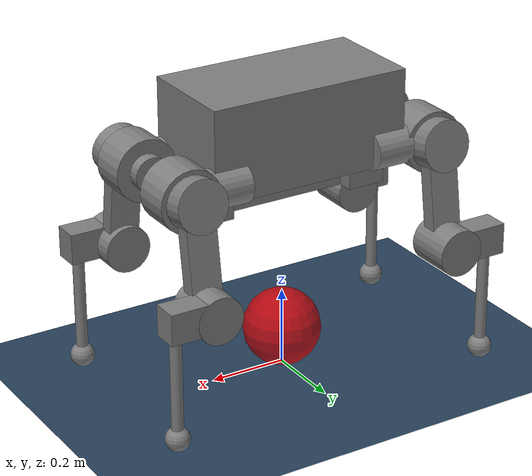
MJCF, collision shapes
<mujoco model="anymal_b scene">
    <include file="anymal_b.xml" />

    <statistic center="0 0 0.3" extent="1.2" />

    <visual>
        <headlight diffuse="0.6 0.6 0.6" ambient="0.3 0.3 0.3" specular="0 0 0" />
        <rgba haze="0.15 0.25 0.35 1" />
        <global azimuth="120" elevation="-20" />
    </visual>

    <asset>
        <texture type="skybox" builtin="gradient" rgb1="0.3 0.5 0.7" rgb2="0 0 0" width="512"
            height="3072" />
        <texture type="2d" name="groundplane" builtin="checker" mark="edge" rgb1="0.2 0.3 0.4"
            rgb2="0.1 0.2 0.3"
            markrgb="0.8 0.8 0.8" width="300" height="300" />
        <material name="groundplane" texture="groundplane" texuniform="true" texrepeat="5 5"
            reflectance="0.2" />
    </asset>

    <worldbody>
        <light pos="0 0 1.5" dir="0 0 -1" directional="true" />
        <site name="target_site" pos="0 0 0.1" size="0.1" rgba="1 0 0 0.7" />
        <geom name="floor" size="0 0 0.05" type="plane" material="groundplane" />
    </worldbody>
</mujoco>

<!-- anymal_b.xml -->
<mujoco model="anymal_b">
  <compiler angle="radian" meshdir="assets" texturedir="assets" autolimits="true" />

  <option cone="elliptic" impratio="100" />

  <default>
    <default class="anymal_b">
      <mesh scale="0.001 0.001 0.001" />
      <site group="3" rgba="1 0 0 0.66" />
      <joint type="hinge" damping="1" frictionloss="0.1" />
      <default class="HAA">
        <joint axis="1 0 0" />
      </default>
      <default class="HFE">
        <joint axis="0 1 0" />
      </default>
      <default class="KFE">
        <joint axis="0 1 0" />
      </default>
      <geom mass="0" />
      <default class="visual">
        <geom type="mesh" contype="0" conaffinity="0" group="2" />
        <default class="visual_zflip">
          <geom quat="0 0 0 1" />
        </default>
      </default>
      <default class="collision">
        <geom group="3" />
        <default class="haa_actuator">
          <geom type="cylinder" size="0.05 0.05" euler="0 1.57079632679 0" />
        </default>
        <default class="belly_plate_bump">
          <geom type="box" size="0.05 0.05 0.035" />
        </default>
        <default class="mount">
          <geom type="box" size="0.01 0.135 0.045" />
        </default>
        <default class="protector">
          <geom type="cylinder" size="0.08 0.05" />
        </default>
        <default class="heatfins">
          <geom type="cylinder" size="0.045 0.015" />
        </default>
        <default class="thigh_with_fins">
          <geom type="box" size="0.04 0.02 0.125" />
        </default>
        <default class="kfe_actuator">
          <geom type="cylinder" size="0.06 0.06" />
        </default>
        <default class="upper_protector">
          <geom type="cylinder" size="0.066 0.06" />
        </default>
        <default class="shank">
          <geom type="box" size="0.04 0.034 0.065" euler="0 1.57079632679 0" />
        </default>
        <default class="adapter">
          <geom type="cylinder" size="0.015 0.14" pos="0 0 -0.14" />
        </default>
        <default class="foot">
          <geom type="sphere" size="0.031" pos="0 0 0.02325" priority="1" solimp="0.015 1 0.031"
            condim="6"
            friction="0.8 0.02 0.01" />
        </default>
      </default>
      <default class="affine">
        <position kp="100" ctrlrange="-6.28 6.28" forcerange="-40 40" />
      </default>
    </default>
  </default>

  <asset>
    <material name="light_gray" rgba="0.8 0.8 0.8 1" />
    <material name="dark_gray" rgba="0.64 0.64 0.64 1" />
    <material name="alu_eloxiert" rgba="0.1139 0.1139 0.1139 1" />
    <material name="any_blau" rgba="0.2399 0.3499 0.5899 1" />
    <texture name="base_uv_texture" type="2d" file="base_uv_texture.png" />
    <material name="carbon_fibre_logo" texture="base_uv_texture" specular="1" shininess="1" />
    <material name="rot_emcy" rgba="0.2611 0.09645 0.0735 1" />
    <material name="yellow_emcy" rgba="0.5987 0.4607 0.2442 1" />
    <material name="copper" rgba="0.8 0.4673 0.284 1" />
    <material name="foam_dark" rgba="0.1 0.1 0.1 1" />
    <texture name="carbon_uv_texture" type="2d" file="carbon_uv_texture.png" />
    <material name="carbon_fibre" texture="carbon_uv_texture" specular="1" shininess="1" />

    <mesh class="anymal_b" file="anymal_base_0.obj" />
    <mesh class="anymal_b" file="anymal_base_1.obj" />
    <mesh class="anymal_b" file="anymal_base_2.obj" />
    <mesh class="anymal_b" file="anymal_base_3.obj" />
    <mesh class="anymal_b" file="anymal_base_4.obj" />
    <mesh class="anymal_b" file="anymal_base_5.obj" />
    <mesh class="anymal_b" file="anymal_base_6.obj" />
    <mesh class="anymal_b" file="anymal_base_7.obj" />
    <mesh class="anymal_b" file="anymal_hip_l_0.obj" />
    <mesh class="anymal_b" file="anymal_hip_l_1.obj" />
    <mesh class="anymal_b" file="anymal_hip_l_2.obj" />
    <mesh class="anymal_b" file="anymal_hip_l_3.obj" />
    <mesh class="anymal_b" file="anymal_hip_l_4.obj" />
    <mesh class="anymal_b" file="anymal_hip_l_5.obj" />
    <mesh class="anymal_b" file="anymal_hip_l_6.obj" />
    <mesh class="anymal_b" file="anymal_thigh_l_0.obj" />
    <mesh class="anymal_b" file="anymal_thigh_l_1.obj" />
    <mesh class="anymal_b" file="anymal_thigh_l_2.obj" />
    <mesh class="anymal_b" file="anymal_thigh_l_3.obj" />
    <mesh class="anymal_b" file="anymal_thigh_l_4.obj" />
    <mesh class="anymal_b" file="anymal_thigh_l_5.obj" />
    <mesh class="anymal_b" file="anymal_shank_l_0.obj" />
    <mesh class="anymal_b" file="anymal_shank_l_1.obj" />
    <mesh class="anymal_b" file="anymal_shank_l_2.obj" />
    <mesh class="anymal_b" file="anymal_shank_l_3.obj" />
    <mesh class="anymal_b" file="anymal_hip_r_0.obj" />
    <mesh class="anymal_b" file="anymal_hip_r_1.obj" />
    <mesh class="anymal_b" file="anymal_hip_r_2.obj" />
    <mesh class="anymal_b" file="anymal_hip_r_3.obj" />
    <mesh class="anymal_b" file="anymal_hip_r_4.obj" />
    <mesh class="anymal_b" file="anymal_hip_r_5.obj" />
    <mesh class="anymal_b" file="anymal_hip_r_6.obj" />
    <mesh class="anymal_b" file="anymal_thigh_r_0.obj" />
    <mesh class="anymal_b" file="anymal_thigh_r_1.obj" />
    <mesh class="anymal_b" file="anymal_thigh_r_2.obj" />
    <mesh class="anymal_b" file="anymal_thigh_r_3.obj" />
    <mesh class="anymal_b" file="anymal_thigh_r_4.obj" />
    <mesh class="anymal_b" file="anymal_thigh_r_5.obj" />
    <mesh class="anymal_b" file="anymal_shank_r_0.obj" />
    <mesh class="anymal_b" file="anymal_shank_r_1.obj" />
    <mesh class="anymal_b" file="anymal_shank_r_2.obj" />
    <mesh class="anymal_b" file="anymal_shank_r_3.obj" />
    <mesh class="anymal_b" file="anymal_foot_0.obj" />
    <mesh class="anymal_b" file="anymal_foot_1.obj" />
    <mesh class="anymal_b" file="anymal_foot_2.obj" />
    <mesh class="anymal_b" file="anymal_foot_3.obj" />
  </asset>

  <worldbody>
    <light name="spotlight" mode="targetbodycom" target="base" pos="0 -1 2" cutoff="30" />
    <body name="base" pos="0 0 0.58" quat="0 0 0 1" childclass="anymal_b">
      <freejoint />
      <inertial mass="19.2035" pos="0.0025 0 0.0502071" quat="0.5 0.5 0.5 0.5"
        diaginertia="0.639559 0.624031 0.217374" />
      <geom class="visual" mesh="anymal_base_0" material="yellow_emcy" />
      <geom class="visual" mesh="anymal_base_1" material="rot_emcy" />
      <geom class="visual" mesh="anymal_base_2" material="dark_gray" />
      <geom class="visual" mesh="anymal_base_3" material="any_blau" />
      <geom class="visual" mesh="anymal_base_4" material="alu_eloxiert" />
      <geom class="visual" mesh="anymal_base_5" material="carbon_fibre_logo" />
      <geom class="visual" mesh="anymal_base_6" material="foam_dark" />
      <geom class="visual" mesh="anymal_base_7" material="light_gray" />
      <geom class="collision" size="0.2655 0.135 0.12" pos="0 0 0.08" type="box" />
      <geom class="haa_actuator" pos="0.227 0.116 0" />
      <geom class="haa_actuator" pos="0.227 -0.116 0" />
      <geom class="haa_actuator" pos="-0.227 0.116 0" />
      <geom class="haa_actuator" pos="-0.227 -0.116 0" />
      <geom class="belly_plate_bump" pos="0.2155 0 -0.09" />
      <geom class="belly_plate_bump" pos="-0.2155 0 -0.09" />
      <geom class="collision" size="0.2655 0.01 0.035" pos="0 0 -0.09" type="box" />
      <body name="LF_HIP" pos="0.277 0.116 0">
        <inertial mass="1.42462" pos="0.0645163 -0.0037871 -0.000152184"
          quat="0.996866 0.0379822 0.0252009 -0.0646548"
          diaginertia="0.00243341 0.00230249 0.00197758" />
        <joint name="LF_HAA" class="HAA" />
        <geom class="visual" mesh="anymal_hip_l_0" material="light_gray" />
        <geom class="visual" mesh="anymal_hip_l_1" material="copper" />
        <geom class="visual" mesh="anymal_hip_l_2" material="foam_dark" />
        <geom class="visual" mesh="anymal_hip_l_3" material="alu_eloxiert" />
        <geom class="visual" mesh="anymal_hip_l_4" material="any_blau" />
        <geom class="visual" mesh="anymal_hip_l_5" material="dark_gray" />
        <geom class="visual" mesh="anymal_hip_l_6" material="light_gray" />
        <geom class="protector" pos="0.0635 -0.009 0" quat="1 1 0 0" />
        <geom class="heatfins" pos="0.0635 -0.074 0" quat="1 1 0 0" />
        <body name="LF_THIGH" pos="0.0635 0.041 0">
          <inertial mass="1.63498" pos="-0.00389797 0.0542266 -0.214583"
            quat="0.74395 -0.0633414 0.0362707 0.664237"
            diaginertia="0.0122697 0.0120427 0.00228302" />
          <joint name="LF_HFE" class="HFE" />
          <geom class="visual" material="any_blau" mesh="anymal_thigh_l_0" />
          <geom class="visual" material="dark_gray" mesh="anymal_thigh_l_1" />
          <geom class="visual" material="copper" mesh="anymal_thigh_l_2" />
          <geom class="visual" material="alu_eloxiert" mesh="anymal_thigh_l_3" />
          <geom class="visual" material="foam_dark" mesh="anymal_thigh_l_4" />
          <geom class="visual" material="light_gray" mesh="anymal_thigh_l_5" />
          <geom class="thigh_with_fins" pos="0 0.035 -0.125" quat="0.997373 0.0724365 0 0" />
          <geom class="kfe_actuator" pos="0 0.069 -0.25" quat="1 1 0 0" />
          <geom class="upper_protector" pos="0 -0.005 0" quat="0.654029 0.75647 0 0" />
          <body name="LF_SHANK" pos="0 0.109 -0.25">
            <inertial mass="0.472163" pos="0.0696396 -0.0132494 -0.150905"
              quat="0.677954 -0.0950614 -0.0578104 0.726636"
              diaginertia="0.0116034 0.0110666 0.000723761" />
            <joint name="LF_KFE" class="KFE" />
            <geom class="visual" material="foam_dark" mesh="anymal_shank_l_0" />
            <geom class="visual" material="dark_gray" mesh="anymal_shank_l_1" />
            <geom class="visual" material="light_gray" mesh="anymal_shank_l_2" />
            <geom class="visual" material="light_gray" mesh="anymal_shank_l_3" />
            <geom class="shank" pos="0.065 -0.015 0.01" quat="1 0 1 0" />
            <geom class="visual" material="carbon_fibre" mesh="anymal_foot_0" pos="0.1 -0.02 0.032" />
            <geom class="visual" material="foam_dark" mesh="anymal_foot_1" pos="0.1 -0.02 0.032" />
            <geom class="visual" material="dark_gray" mesh="anymal_foot_2" pos="0.1 -0.02 0.032" />
            <geom class="visual" material="light_gray" mesh="anymal_foot_3" pos="0.1 -0.02 0.032" />
            <geom class="adapter" pos="0.1 -0.02 -0.160625" />
            <geom class="foot" pos="0.1 -0.02 -0.298" />
          </body>
        </body>
      </body>
      <body name="RF_HIP" pos="0.277 -0.116 0">
        <inertial mass="1.42462" pos="0.0645163 0.0037871 -0.000152184"
          quat="0.996866 -0.0379822 0.0252009 0.0646548"
          diaginertia="0.00243341 0.00230249 0.00197758" />
        <joint name="RF_HAA" class="HAA" />
        <geom class="visual" material="light_gray" mesh="anymal_hip_r_0" />
        <geom class="visual" material="copper" mesh="anymal_hip_r_1" />
        <geom class="visual" material="foam_dark" mesh="anymal_hip_r_2" />
        <geom class="visual" material="alu_eloxiert" mesh="anymal_hip_r_3" />
        <geom class="visual" material="any_blau" mesh="anymal_hip_r_4" />
        <geom class="visual" material="dark_gray" mesh="anymal_hip_r_5" />
        <geom class="visual" material="light_gray" mesh="anymal_hip_r_6" />
        <geom class="protector" pos="0.0635 0.009 0" quat="1 1 0 0" />
        <geom class="heatfins" pos="0.0635 0.074 0" quat="1 1 0 0" />
        <body name="RF_THIGH" pos="0.0635 -0.041 0">
          <inertial mass="1.63498" pos="-0.00389797 -0.0542266 -0.214583"
            quat="0.664237 0.0362707 -0.0633414 0.74395"
            diaginertia="0.0122697 0.0120427 0.00228302" />
          <joint name="RF_HFE" class="HFE" />
          <geom class="visual" material="any_blau" mesh="anymal_thigh_r_0" />
          <geom class="visual" material="dark_gray" mesh="anymal_thigh_r_1" />
          <geom class="visual" material="copper" mesh="anymal_thigh_r_2" />
          <geom class="visual" material="alu_eloxiert" mesh="anymal_thigh_r_3" />
          <geom class="visual" material="foam_dark" mesh="anymal_thigh_r_4" />
          <geom class="visual" material="light_gray" mesh="anymal_thigh_r_5" />
          <geom class="thigh_with_fins" pos="0 -0.035 -0.125" quat="0.997373 -0.0724365 0 0" />
          <geom class="kfe_actuator" pos="0 -0.069 -0.25" quat="1 1 0 0" />
          <geom class="upper_protector" pos="0 0.005 0" quat="0.654029 -0.75647 0 0" />
          <body name="RF_SHANK" pos="0 -0.109 -0.25">
            <inertial mass="0.472163" pos="0.0696396 0.0132494 -0.150905"
              quat="0.726636 -0.0578104 -0.0950614 0.677954"
              diaginertia="0.0116034 0.0110666 0.000723761" />
            <joint name="RF_KFE" class="KFE" />
            <geom class="visual" material="foam_dark" mesh="anymal_shank_r_0" />
            <geom class="visual" material="dark_gray" mesh="anymal_shank_r_1" />
            <geom class="visual" material="light_gray" mesh="anymal_shank_r_2" />
            <geom class="visual" material="light_gray" mesh="anymal_shank_r_3" />
            <geom class="shank" pos="0.065 0.015 0.01" quat="1 0 1 0" />
            <geom class="visual" material="carbon_fibre" mesh="anymal_foot_0" pos="0.1 0.02 0.032" />
            <geom class="visual" material="foam_dark" mesh="anymal_foot_1" pos="0.1 0.02 0.032" />
            <geom class="visual" material="dark_gray" mesh="anymal_foot_2" pos="0.1 0.02 0.032" />
            <geom class="visual" material="light_gray" mesh="anymal_foot_3" pos="0.1 0.02 0.032" />
            <geom class="adapter" pos="0.1 0.02 -0.160625" />
            <geom class="foot" pos="0.1 0.02 -0.298" />
          </body>
        </body>
      </body>
      <body name="LH_HIP" pos="-0.277 0.116 0">
        <inertial mass="1.42462" pos="-0.0645163 -0.0037871 -0.000152184"
          quat="0.996866 0.0379822 -0.0252009 0.0646548"
          diaginertia="0.00243341 0.00230249 0.00197758" />
        <joint name="LH_HAA" class="HAA" />
        <geom class="visual_zflip" material="light_gray" mesh="anymal_hip_r_0" />
        <geom class="visual_zflip" material="copper" mesh="anymal_hip_r_1" />
        <geom class="visual_zflip" material="foam_dark" mesh="anymal_hip_r_2" />
        <geom class="visual_zflip" material="alu_eloxiert" mesh="anymal_hip_r_3" />
        <geom class="visual_zflip" material="any_blau" mesh="anymal_hip_r_4" />
        <geom class="visual_zflip" material="dark_gray" mesh="anymal_hip_r_5" />
        <geom class="visual_zflip" material="light_gray" mesh="anymal_hip_r_6" />
        <geom class="protector" pos="-0.0635 -0.009 0" quat="1 -1 0 0" />
        <geom class="heatfins" pos="-0.0635 -0.074 0" quat="1 -1 0 0" />
        <body name="LH_THIGH" pos="-0.0635 0.041 0">
          <inertial mass="1.63498" pos="0.00389797 0.0542266 -0.214583"
            quat="0.664237 -0.0362707 0.0633414 0.74395"
            diaginertia="0.0122697 0.0120427 0.00228302" />
          <joint name="LH_HFE" class="HFE" />
          <geom class="visual_zflip" material="any_blau" mesh="anymal_thigh_r_0" />
          <geom class="visual_zflip" material="dark_gray" mesh="anymal_thigh_r_1" />
          <geom class="visual_zflip" material="copper" mesh="anymal_thigh_r_2" />
          <geom class="visual_zflip" material="alu_eloxiert" mesh="anymal_thigh_r_3" />
          <geom class="visual_zflip" material="foam_dark" mesh="anymal_thigh_r_4" />
          <geom class="visual_zflip" material="light_gray" mesh="anymal_thigh_r_5" />
          <geom class="thigh_with_fins" pos="0 0.035 -0.125" quat="0.997373 0.0724365 0 0" />
          <geom class="kfe_actuator" pos="0 0.069 -0.25" quat="1 1 0 0" />
          <geom class="upper_protector" pos="0 -0.005 0" quat="0.654029 0.75647 0 0" />
          <body name="LH_SHANK" pos="0 0.109 -0.25">
            <inertial mass="0.472163" pos="-0.0696396 -0.0132494 -0.150905"
              quat="0.726636 0.0578104 0.0950615 0.677954"
              diaginertia="0.0116034 0.0110666 0.000723761" />
            <joint name="LH_KFE" class="KFE" />
            <geom class="visual_zflip" material="foam_dark" mesh="anymal_shank_r_0" />
            <geom class="visual_zflip" material="dark_gray" mesh="anymal_shank_r_1" />
            <geom class="visual_zflip" material="light_gray" mesh="anymal_shank_r_2" />
            <geom class="visual_zflip" material="light_gray" mesh="anymal_shank_r_3" />
            <geom class="shank" pos="-0.065 -0.015 0.01" quat="1 0 1 0" />
            <geom class="visual_zflip" material="carbon_fibre" mesh="anymal_foot_0"
              pos="-0.1 -0.02 0.032" />
            <geom class="visual_zflip" material="foam_dark" mesh="anymal_foot_1"
              pos="-0.1 -0.02 0.032" />
            <geom class="visual_zflip" material="dark_gray" mesh="anymal_foot_2"
              pos="-0.1 -0.02 0.032" />
            <geom class="visual_zflip" material="light_gray" mesh="anymal_foot_3"
              pos="-0.1 -0.02 0.032" />
            <geom class="adapter" pos="-0.1 -0.02 -0.160625" />
            <geom class="foot" pos="-0.1 -0.02 -0.298" />
          </body>
        </body>
      </body>
      <body name="RH_HIP" pos="-0.277 -0.116 0">
        <inertial mass="1.42462" pos="-0.0645163 0.0037871 -0.000152184"
          quat="0.996866 -0.0379822 -0.0252009 -0.0646548"
          diaginertia="0.00243341 0.00230249 0.00197758" />
        <joint name="RH_HAA" class="HAA" />
        <geom class="visual_zflip" mesh="anymal_hip_l_0" material="light_gray" />
        <geom class="visual_zflip" mesh="anymal_hip_l_1" material="copper" />
        <geom class="visual_zflip" mesh="anymal_hip_l_2" material="foam_dark" />
        <geom class="visual_zflip" mesh="anymal_hip_l_3" material="alu_eloxiert" />
        <geom class="visual_zflip" mesh="anymal_hip_l_4" material="any_blau" />
        <geom class="visual_zflip" mesh="anymal_hip_l_5" material="dark_gray" />
        <geom class="visual_zflip" mesh="anymal_hip_l_6" material="light_gray" />
        <geom class="protector" pos="-0.0635 0.009 0" quat="1 -1 0 0" />
        <geom class="heatfins" pos="-0.0635 0.074 0" quat="1 -1 0 0" />
        <body name="RH_THIGH" pos="-0.0635 -0.041 0">
          <inertial mass="1.63498" pos="0.00389797 -0.0542266 -0.214583"
            quat="0.74395 0.0633414 -0.0362707 0.664237"
            diaginertia="0.0122697 0.0120427 0.00228302" />
          <joint name="RH_HFE" class="HFE" />
          <geom class="visual_zflip" material="any_blau" mesh="anymal_thigh_l_0" />
          <geom class="visual_zflip" material="dark_gray" mesh="anymal_thigh_l_1" />
          <geom class="visual_zflip" material="copper" mesh="anymal_thigh_l_2" />
          <geom class="visual_zflip" material="alu_eloxiert" mesh="anymal_thigh_l_3" />
          <geom class="visual_zflip" material="foam_dark" mesh="anymal_thigh_l_4" />
          <geom class="visual_zflip" material="light_gray" mesh="anymal_thigh_l_5" />
          <geom class="thigh_with_fins" pos="0 -0.035 -0.125" quat="0.997373 -0.0724365 0 0" />
          <geom class="kfe_actuator" pos="0 -0.069 -0.25" quat="1 1 0 0" />
          <geom class="upper_protector" pos="0 0.005 0" quat="0.654029 -0.75647 0 0" />
          <body name="RH_SHANK" pos="0 -0.109 -0.25">
            <inertial mass="0.472163" pos="-0.0696396 0.0132494 -0.150905"
              quat="0.677954 0.0950614 0.0578104 0.726636"
              diaginertia="0.0116034 0.0110666 0.000723761" />
            <joint name="RH_KFE" class="KFE" />
            <geom class="visual_zflip" material="foam_dark" mesh="anymal_shank_l_0" />
            <geom class="visual_zflip" material="dark_gray" mesh="anymal_shank_l_1" />
            <geom class="visual_zflip" material="light_gray" mesh="anymal_shank_l_2" />
            <geom class="visual_zflip" material="light_gray" mesh="anymal_shank_l_3" />
            <geom class="shank" pos="-0.065 0.015 0.01" quat="1 0 1 0" />
            <geom class="visual_zflip" material="carbon_fibre" mesh="anymal_foot_0"
              pos="-0.1 0.02 0.032" />
            <geom class="visual_zflip" material="foam_dark" mesh="anymal_foot_1"
              pos="-0.1 0.02 0.032" />
            <geom class="visual_zflip" material="dark_gray" mesh="anymal_foot_2"
              pos="-0.1 0.02 0.032" />
            <geom class="visual_zflip" material="light_gray" mesh="anymal_foot_3"
              pos="-0.1 0.02 0.032" />
            <geom class="adapter" pos="-0.1 0.02 -0.160625" />
            <geom class="foot" pos="-0.1 0.02 -0.298" />
          </body>
        </body>
      </body>
    </body>
  </worldbody>

  <contact>
    <exclude body1="base" body2="LF_THIGH" />
    <exclude body1="base" body2="RF_THIGH" />
    <exclude body1="base" body2="LH_THIGH" />
    <exclude body1="base" body2="RH_THIGH" />
  </contact>

  <actuator>
    <position class="affine" joint="LF_HAA" name="LF_HAA" />
    <position class="affine" joint="LF_HFE" name="LF_HFE" />
    <position class="affine" joint="LF_KFE" name="LF_KFE" />
    <position class="affine" joint="RF_HAA" name="RF_HAA" />
    <position class="affine" joint="RF_HFE" name="RF_HFE" />
    <position class="affine" joint="RF_KFE" name="RF_KFE" />
    <position class="affine" joint="LH_HAA" name="LH_HAA" />
    <position class="affine" joint="LH_HFE" name="LH_HFE" />
    <position class="affine" joint="LH_KFE" name="LH_KFE" />
    <position class="affine" joint="RH_HAA" name="RH_HAA" />
    <position class="affine" joint="RH_HFE" name="RH_HFE" />
    <position class="affine" joint="RH_KFE" name="RH_KFE" />
  </actuator>
</mujoco>
